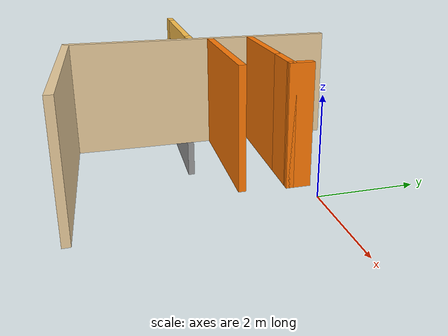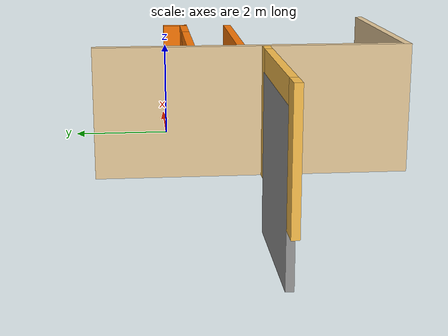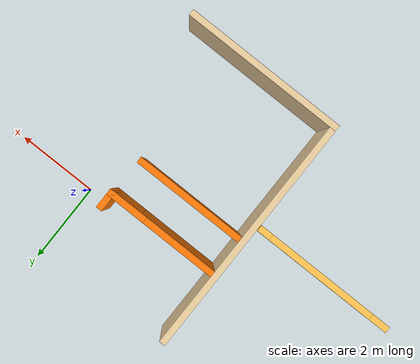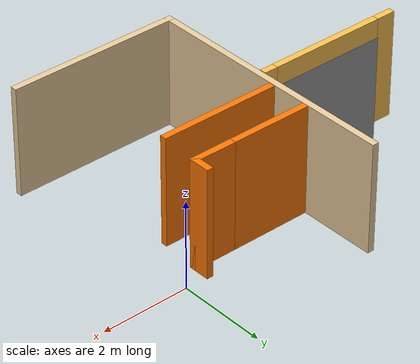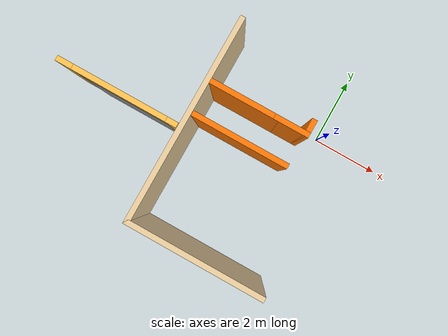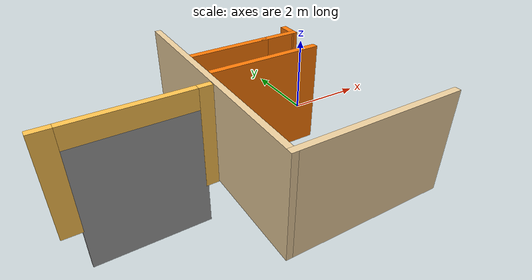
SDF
<sdf version="1.6">
 <model name="my_world">
  <link name="Wall_3">
   <pose>-1.47498 -4.475 0 0 -0 3.14159</pose>
   <visual name="Wall_3_Visual">
    <pose>0 0 1.25 0 -0 0</pose>
    <geometry><box><size>4 0.15 2.5</size></box></geometry>
    <material>
     <script><uri>file://media/materials/scripts/gazebo.material</uri><name>Gazebo/Grey</name></script>
     <ambient>0.921569 0.807843 0.615686 1</ambient>
     <diffuse>0.7 0.7 0.7 1</diffuse>
     <specular>0.01 0.01 0.01 1</specular>
     <emissive>0 0 0 1</emissive>
     <shader type="pixel"/>
    </material>
    <meta><layer>0</layer></meta>
   </visual>
   <collision name="Wall_3_Collision">
    <pose>0 0 1.25 0 -0 0</pose>
    <geometry><box><size>4 0.15 2.5</size></box></geometry>
    <surface>
     <friction>
      <ode><mu>1</mu><mu2>1</mu2><fdir1>0 0 0</fdir1><slip1>0</slip1><slip2>0</slip2></ode>
      <torsional>
       <coefficient>1</coefficient>
       <patch_radius>0</patch_radius>
       <surface_radius>0</surface_radius>
       <use_patch_radius>1</use_patch_radius>
       <ode><slip>0</slip></ode>
      </torsional>
     </friction>
     <bounce><restitution_coefficient>0</restitution_coefficient><threshold>1e+06</threshold></bounce>
     <contact>
      <collide_without_contact>0</collide_without_contact>
      <collide_without_contact_bitmask>1</collide_without_contact_bitmask>
      <collide_bitmask>1</collide_bitmask>
      <ode>
       <soft_cfm>0</soft_cfm>
       <soft_erp>0.2</soft_erp>
       <kp>1e+13</kp>
       <kd>1</kd>
       <max_vel>0.01</max_vel>
       <min_depth>0</min_depth>
      </ode>
      <bullet>
       <split_impulse>1</split_impulse>
       <split_impulse_penetration_threshold>-0.01</split_impulse_penetration_threshold>
       <soft_cfm>0</soft_cfm>
       <soft_erp>0.2</soft_erp>
       <kp>1e+13</kp>
       <kd>1</kd>
      </bullet>
     </contact>
    </surface>
   </collision>
  </link>
  <link name="Wall_40">
   <pose>-1.94141 -1.31804 0 0 -0 3.14159</pose>
   <visual name="Wall_40_Visual">
    <pose>0 0 1.25 0 -0 0</pose>
    <geometry><box><size>2.75 0.15 2.5</size></box></geometry>
    <material>
     <script><uri>file://media/materials/scripts/gazebo.material</uri><name>Gazebo/Grey</name></script>
     <ambient>0.996078 0.47451 0.0196078 1</ambient>
     <diffuse>0.7 0.7 0.7 1</diffuse>
     <specular>0.01 0.01 0.01 1</specular>
     <emissive>0 0 0 1</emissive>
     <shader type="pixel"/>
    </material>
    <meta><layer>0</layer></meta>
   </visual>
   <collision name="Wall_40_Collision">
    <pose>0 0 1.25 0 -0 0</pose>
    <geometry><box><size>2.75 0.15 2.5</size></box></geometry>
    <surface>
     <friction>
      <ode><mu>1</mu><mu2>1</mu2><fdir1>0 0 0</fdir1><slip1>0</slip1><slip2>0</slip2></ode>
      <torsional>
       <coefficient>1</coefficient>
       <patch_radius>0</patch_radius>
       <surface_radius>0</surface_radius>
       <use_patch_radius>1</use_patch_radius>
       <ode><slip>0</slip></ode>
      </torsional>
     </friction>
     <bounce><restitution_coefficient>0</restitution_coefficient><threshold>1e+06</threshold></bounce>
     <contact>
      <collide_without_contact>0</collide_without_contact>
      <collide_without_contact_bitmask>1</collide_without_contact_bitmask>
      <collide_bitmask>1</collide_bitmask>
      <ode>
       <soft_cfm>0</soft_cfm>
       <soft_erp>0.2</soft_erp>
       <kp>1e+13</kp>
       <kd>1</kd>
       <max_vel>0.01</max_vel>
       <min_depth>0</min_depth>
      </ode>
      <bullet>
       <split_impulse>1</split_impulse>
       <split_impulse_penetration_threshold>-0.01</split_impulse_penetration_threshold>
       <soft_cfm>0</soft_cfm>
       <soft_erp>0.2</soft_erp>
       <kp>1e+13</kp>
       <kd>1</kd>
      </bullet>
     </contact>
    </surface>
   </collision>
  </link>
  <link name="Wall_45">
   <pose>-0.976844 -0.380071 0 0 -0 0</pose>
   <visual name="Wall_45_Visual">
    <pose>0 0 1.25 0 -0 0</pose>
    <geometry><box><size>1 0.15 2.5</size></box></geometry>
    <material>
     <script><uri>file://media/materials/scripts/gazebo.material</uri><name>Gazebo/Grey</name></script>
     <ambient>0.996078 0.47451 0.0196078 1</ambient>
     <diffuse>0.7 0.7 0.7 1</diffuse>
     <specular>0.01 0.01 0.01 1</specular>
     <emissive>0 0 0 1</emissive>
     <shader type="pixel"/>
    </material>
    <meta><layer>0</layer></meta>
   </visual>
   <collision name="Wall_45_Collision">
    <pose>0 0 1.25 0 -0 0</pose>
    <geometry><box><size>1 0.15 2.5</size></box></geometry>
    <surface>
     <friction>
      <ode><mu>1</mu><mu2>1</mu2><fdir1>0 0 0</fdir1><slip1>0</slip1><slip2>0</slip2></ode>
      <torsional>
       <coefficient>1</coefficient>
       <patch_radius>0</patch_radius>
       <surface_radius>0</surface_radius>
       <use_patch_radius>1</use_patch_radius>
       <ode><slip>0</slip></ode>
      </torsional>
     </friction>
     <bounce><restitution_coefficient>0</restitution_coefficient><threshold>1e+06</threshold></bounce>
     <contact>
      <collide_without_contact>0</collide_without_contact>
      <collide_without_contact_bitmask>1</collide_without_contact_bitmask>
      <collide_bitmask>1</collide_bitmask>
      <ode>
       <soft_cfm>0</soft_cfm>
       <soft_erp>0.2</soft_erp>
       <kp>1e+13</kp>
       <kd>1</kd>
       <max_vel>0.01</max_vel>
       <min_depth>0</min_depth>
      </ode>
      <bullet>
       <split_impulse>1</split_impulse>
       <split_impulse_penetration_threshold>-0.01</split_impulse_penetration_threshold>
       <soft_cfm>0</soft_cfm>
       <soft_erp>0.2</soft_erp>
       <kp>1e+13</kp>
       <kd>1</kd>
      </bullet>
     </contact>
    </surface>
   </collision>
  </link>
  <link name="Wall_47">
   <pose>-2.32684 -0.380071 0 0 -0 3.14159</pose>
   <visual name="Wall_47_Visual">
    <pose>0 0 1.25 0 -0 0</pose>
    <geometry><box><size>2 0.15 2.5</size></box></geometry>
    <material>
     <script><uri>file://media/materials/scripts/gazebo.material</uri><name>Gazebo/Grey</name></script>
     <ambient>0.996078 0.47451 0.0196078 1</ambient>
     <diffuse>0.7 0.7 0.7 1</diffuse>
     <specular>0.01 0.01 0.01 1</specular>
     <emissive>0 0 0 1</emissive>
     <shader type="pixel"/>
    </material>
    <meta><layer>0</layer></meta>
   </visual>
   <collision name="Wall_47_Collision">
    <pose>0 0 1.25 0 -0 0</pose>
    <geometry><box><size>2 0.15 2.5</size></box></geometry>
    <surface>
     <friction>
      <ode><mu>1</mu><mu2>1</mu2><fdir1>0 0 0</fdir1><slip1>0</slip1><slip2>0</slip2></ode>
      <torsional>
       <coefficient>1</coefficient>
       <patch_radius>0</patch_radius>
       <surface_radius>0</surface_radius>
       <use_patch_radius>1</use_patch_radius>
       <ode><slip>0</slip></ode>
      </torsional>
     </friction>
     <bounce><restitution_coefficient>0</restitution_coefficient><threshold>1e+06</threshold></bounce>
     <contact>
      <collide_without_contact>0</collide_without_contact>
      <collide_without_contact_bitmask>1</collide_without_contact_bitmask>
      <collide_bitmask>1</collide_bitmask>
      <ode>
       <soft_cfm>0</soft_cfm>
       <soft_erp>0.2</soft_erp>
       <kp>1e+13</kp>
       <kd>1</kd>
       <max_vel>0.01</max_vel>
       <min_depth>0</min_depth>
      </ode>
      <bullet>
       <split_impulse>1</split_impulse>
       <split_impulse_penetration_threshold>-0.01</split_impulse_penetration_threshold>
       <soft_cfm>0</soft_cfm>
       <soft_erp>0.2</soft_erp>
       <kp>1e+13</kp>
       <kd>1</kd>
      </bullet>
     </contact>
    </surface>
   </collision>
  </link>
  <link name="Wall_49">
   <pose>-0.551844 -0.205071 0 0 -0 1.5708</pose>
   <visual name="Wall_49_Visual">
    <pose>0 0 1.25 0 -0 0</pose>
    <geometry><box><size>0.5 0.15 2.5</size></box></geometry>
    <material>
     <script><uri>file://media/materials/scripts/gazebo.material</uri><name>Gazebo/Grey</name></script>
     <ambient>0.996078 0.47451 0.0196078 1</ambient>
     <diffuse>0.7 0.7 0.7 1</diffuse>
     <specular>0.01 0.01 0.01 1</specular>
     <emissive>0 0 0 1</emissive>
     <shader type="pixel"/>
    </material>
    <meta><layer>0</layer></meta>
   </visual>
   <collision name="Wall_49_Collision">
    <pose>0 0 1.25 0 -0 0</pose>
    <geometry><box><size>0.5 0.15 2.5</size></box></geometry>
    <surface>
     <friction>
      <ode><mu>1</mu><mu2>1</mu2><fdir1>0 0 0</fdir1><slip1>0</slip1><slip2>0</slip2></ode>
      <torsional>
       <coefficient>1</coefficient>
       <patch_radius>0</patch_radius>
       <surface_radius>0</surface_radius>
       <use_patch_radius>1</use_patch_radius>
       <ode><slip>0</slip></ode>
      </torsional>
     </friction>
     <bounce><restitution_coefficient>0</restitution_coefficient><threshold>1e+06</threshold></bounce>
     <contact>
      <collide_without_contact>0</collide_without_contact>
      <collide_without_contact_bitmask>1</collide_without_contact_bitmask>
      <collide_bitmask>1</collide_bitmask>
      <ode>
       <soft_cfm>0</soft_cfm>
       <soft_erp>0.2</soft_erp>
       <kp>1e+13</kp>
       <kd>1</kd>
       <max_vel>0.01</max_vel>
       <min_depth>0</min_depth>
      </ode>
      <bullet>
       <split_impulse>1</split_impulse>
       <split_impulse_penetration_threshold>-0.01</split_impulse_penetration_threshold>
       <soft_cfm>0</soft_cfm>
       <soft_erp>0.2</soft_erp>
       <kp>1e+13</kp>
       <kd>1</kd>
      </bullet>
     </contact>
    </surface>
   </collision>
  </link>
  <link name="Wall_58">
   <pose>-5.23927 -1.77431 0 0 -0 0</pose>
   <visual name="Wall_58_Visual_0">
    <pose>-1.52155 0 1.25 0 -0 0</pose>
    <geometry><box><size>0.456906 0.15 2.5</size></box></geometry>
    <material>
     <script><uri>file://media/materials/scripts/gazebo.material</uri><name>Gazebo/Grey</name></script>
     <ambient>1 0.764706 0.305882 1</ambient>
     <diffuse>0.7 0.7 0.7 1</diffuse>
     <specular>0.01 0.01 0.01 1</specular>
     <emissive>0 0 0 1</emissive>
     <shader type="pixel"/>
    </material>
    <meta><layer>0</layer></meta>
   </visual>
   <visual name="Wall_58_Visual_1">
    <pose>1.59098 0 1.25 0 -0 0</pose>
    <geometry><box><size>0.318044 0.15 2.5</size></box></geometry>
    <material>
     <script><uri>file://media/materials/scripts/gazebo.material</uri><name>Gazebo/Grey</name></script>
     <ambient>1 0.764706 0.305882 1</ambient>
     <diffuse>0.7 0.7 0.7 1</diffuse>
     <specular>0.01 0.01 0.01 1</specular>
     <emissive>0 0 0 1</emissive>
     <shader type="pixel"/>
    </material>
    <meta><layer>0</layer></meta>
   </visual>
   <visual name="Wall_58_Visual_2">
    <pose>0.069431 0 2.25 0 -0 0</pose>
    <geometry><box><size>2.72505 0.15 0.5</size></box></geometry>
    <material>
     <script><uri>file://media/materials/scripts/gazebo.material</uri><name>Gazebo/Grey</name></script>
     <ambient>1 0.764706 0.305882 1</ambient>
     <diffuse>0.7 0.7 0.7 1</diffuse>
     <specular>0.01 0.01 0.01 1</specular>
     <emissive>0 0 0 1</emissive>
     <shader type="pixel"/>
    </material>
    <meta><layer>0</layer></meta>
   </visual>
   <collision name="Wall_58_Collision_0">
    <pose>-1.52155 0 1.25 0 -0 0</pose>
    <geometry><box><size>0.456906 0.15 2.5</size></box></geometry>
    <surface>
     <friction>
      <ode><mu>1</mu><mu2>1</mu2><fdir1>0 0 0</fdir1><slip1>0</slip1><slip2>0</slip2></ode>
      <torsional>
       <coefficient>1</coefficient>
       <patch_radius>0</patch_radius>
       <surface_radius>0</surface_radius>
       <use_patch_radius>1</use_patch_radius>
       <ode><slip>0</slip></ode>
      </torsional>
     </friction>
     <bounce><restitution_coefficient>0</restitution_coefficient><threshold>1e+06</threshold></bounce>
     <contact>
      <collide_without_contact>0</collide_without_contact>
      <collide_without_contact_bitmask>1</collide_without_contact_bitmask>
      <collide_bitmask>1</collide_bitmask>
      <ode>
       <soft_cfm>0</soft_cfm>
       <soft_erp>0.2</soft_erp>
       <kp>1e+13</kp>
       <kd>1</kd>
       <max_vel>0.01</max_vel>
       <min_depth>0</min_depth>
      </ode>
      <bullet>
       <split_impulse>1</split_impulse>
       <split_impulse_penetration_threshold>-0.01</split_impulse_penetration_threshold>
       <soft_cfm>0</soft_cfm>
       <soft_erp>0.2</soft_erp>
       <kp>1e+13</kp>
       <kd>1</kd>
      </bullet>
     </contact>
    </surface>
   </collision>
   <collision name="Wall_58_Collision_1">
    <pose>1.59098 0 1.25 0 -0 0</pose>
    <geometry><box><size>0.318044 0.15 2.5</size></box></geometry>
    <surface>
     <friction>
      <ode><mu>1</mu><mu2>1</mu2><fdir1>0 0 0</fdir1><slip1>0</slip1><slip2>0</slip2></ode>
      <torsional>
       <coefficient>1</coefficient>
       <patch_radius>0</patch_radius>
       <surface_radius>0</surface_radius>
       <use_patch_radius>1</use_patch_radius>
       <ode><slip>0</slip></ode>
      </torsional>
     </friction>
     <bounce><restitution_coefficient>0</restitution_coefficient><threshold>1e+06</threshold></bounce>
     <contact>
      <collide_without_contact>0</collide_without_contact>
      <collide_without_contact_bitmask>1</collide_without_contact_bitmask>
      <collide_bitmask>1</collide_bitmask>
      <ode>
       <soft_cfm>0</soft_cfm>
       <soft_erp>0.2</soft_erp>
       <kp>1e+13</kp>
       <kd>1</kd>
       <max_vel>0.01</max_vel>
       <min_depth>0</min_depth>
      </ode>
      <bullet>
       <split_impulse>1</split_impulse>
       <split_impulse_penetration_threshold>-0.01</split_impulse_penetration_threshold>
       <soft_cfm>0</soft_cfm>
       <soft_erp>0.2</soft_erp>
       <kp>1e+13</kp>
       <kd>1</kd>
      </bullet>
     </contact>
    </surface>
   </collision>
   <collision name="Wall_58_Collision_2">
    <pose>0.069431 0 2.25 0 -0 0</pose>
    <geometry><box><size>2.72505 0.15 0.5</size></box></geometry>
    <surface>
     <friction>
      <ode><mu>1</mu><mu2>1</mu2><fdir1>0 0 0</fdir1><slip1>0</slip1><slip2>0</slip2></ode>
      <torsional>
       <coefficient>1</coefficient>
       <patch_radius>0</patch_radius>
       <surface_radius>0</surface_radius>
       <use_patch_radius>1</use_patch_radius>
       <ode><slip>0</slip></ode>
      </torsional>
     </friction>
     <bounce><restitution_coefficient>0</restitution_coefficient><threshold>1e+06</threshold></bounce>
     <contact>
      <collide_without_contact>0</collide_without_contact>
      <collide_without_contact_bitmask>1</collide_without_contact_bitmask>
      <collide_bitmask>1</collide_bitmask>
      <ode>
       <soft_cfm>0</soft_cfm>
       <soft_erp>0.2</soft_erp>
       <kp>1e+13</kp>
       <kd>1</kd>
       <max_vel>0.01</max_vel>
       <min_depth>0</min_depth>
      </ode>
      <bullet>
       <split_impulse>1</split_impulse>
       <split_impulse_penetration_threshold>-0.01</split_impulse_penetration_threshold>
       <soft_cfm>0</soft_cfm>
       <soft_erp>0.2</soft_erp>
       <kp>1e+13</kp>
       <kd>1</kd>
      </bullet>
     </contact>
    </surface>
   </collision>
  </link>
  <link name="Wall_8">
   <pose>-3.39998 -1.55 0 0 0 -1.5708</pose>
   <visual name="Wall_8_Visual">
    <pose>0 0 1.25 0 -0 0</pose>
    <geometry><box><size>6 0.15 2.5</size></box></geometry>
    <material>
     <script><uri>file://media/materials/scripts/gazebo.material</uri><name>Gazebo/Grey</name></script>
     <ambient>0.921569 0.807843 0.615686 1</ambient>
     <diffuse>0.7 0.7 0.7 1</diffuse>
     <specular>0.01 0.01 0.01 1</specular>
     <emissive>0 0 0 1</emissive>
     <shader type="pixel"/>
    </material>
    <meta><layer>0</layer></meta>
   </visual>
   <collision name="Wall_8_Collision">
    <pose>0 0 1.25 0 -0 0</pose>
    <geometry><box><size>6 0.15 2.5</size></box></geometry>
    <surface>
     <friction>
      <ode><mu>1</mu><mu2>1</mu2><fdir1>0 0 0</fdir1><slip1>0</slip1><slip2>0</slip2></ode>
      <torsional>
       <coefficient>1</coefficient>
       <patch_radius>0</patch_radius>
       <surface_radius>0</surface_radius>
       <use_patch_radius>1</use_patch_radius>
       <ode><slip>0</slip></ode>
      </torsional>
     </friction>
     <bounce><restitution_coefficient>0</restitution_coefficient><threshold>1e+06</threshold></bounce>
     <contact>
      <collide_without_contact>0</collide_without_contact>
      <collide_without_contact_bitmask>1</collide_without_contact_bitmask>
      <collide_bitmask>1</collide_bitmask>
      <ode>
       <soft_cfm>0</soft_cfm>
       <soft_erp>0.2</soft_erp>
       <kp>1e+13</kp>
       <kd>1</kd>
       <max_vel>0.01</max_vel>
       <min_depth>0</min_depth>
      </ode>
      <bullet>
       <split_impulse>1</split_impulse>
       <split_impulse_penetration_threshold>-0.01</split_impulse_penetration_threshold>
       <soft_cfm>0</soft_cfm>
       <soft_erp>0.2</soft_erp>
       <kp>1e+13</kp>
       <kd>1</kd>
      </bullet>
     </contact>
    </surface>
   </collision>
  </link>
  <link name="link_2_clone_0">
   <pose>-5.15709 -1.77234 0.5 0 -0 0</pose>
   <inertial>
    <mass>1.32622</mass>
    <inertia><ixx>1.07273</ixx><ixy>0</ixy><ixz>0</ixz><iyy>1.93534</iyy><iyz>0</iyz><izz>0.867746</izz></inertia>
   </inertial>
   <visual name="visual">
    <geometry><box><size>2.79793 0.152332 3.11177</size></box></geometry>
    <material>
     <lighting>1</lighting>
     <script><uri>file://media/materials/scripts/gazebo.material</uri><name>Gazebo/Grey</name></script>
     <shader type="pixel"/>
     <ambient>0.3 0.3 0.3 1</ambient>
     <diffuse>0.7 0.7 0.7 1</diffuse>
     <specular>0.01 0.01 0.01 1</specular>
     <emissive>0 0 0 1</emissive>
    </material>
   </visual>
   <collision name="collision">
    <geometry><box><size>2.79793 0.152332 3.11177</size></box></geometry>
    <surface>
     <friction>
      <ode><mu>1</mu><mu2>1</mu2><fdir1>0 0 0</fdir1><slip1>0</slip1><slip2>0</slip2></ode>
      <torsional>
       <coefficient>1</coefficient>
       <patch_radius>0</patch_radius>
       <surface_radius>0</surface_radius>
       <use_patch_radius>1</use_patch_radius>
       <ode><slip>0</slip></ode>
      </torsional>
     </friction>
     <bounce><restitution_coefficient>0</restitution_coefficient><threshold>1e+06</threshold></bounce>
     <contact>
      <collide_without_contact>0</collide_without_contact>
      <collide_without_contact_bitmask>1</collide_without_contact_bitmask>
      <collide_bitmask>1</collide_bitmask>
      <ode>
       <soft_cfm>0</soft_cfm>
       <soft_erp>0.2</soft_erp>
       <kp>1e+13</kp>
       <kd>1</kd>
       <max_vel>0.01</max_vel>
       <min_depth>0</min_depth>
      </ode>
      <bullet>
       <split_impulse>1</split_impulse>
       <split_impulse_penetration_threshold>-0.01</split_impulse_penetration_threshold>
       <soft_cfm>0</soft_cfm>
       <soft_erp>0.2</soft_erp>
       <kp>1e+13</kp>
       <kd>1</kd>
      </bullet>
     </contact>
    </surface>
   </collision>
  </link>
  <static>1</static>
 </model>
</sdf>
